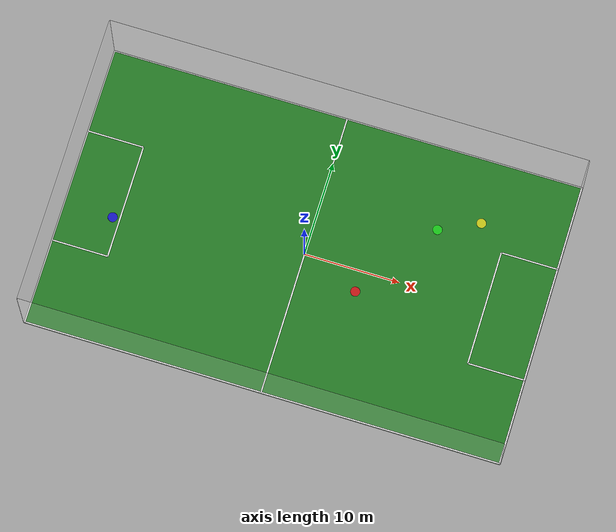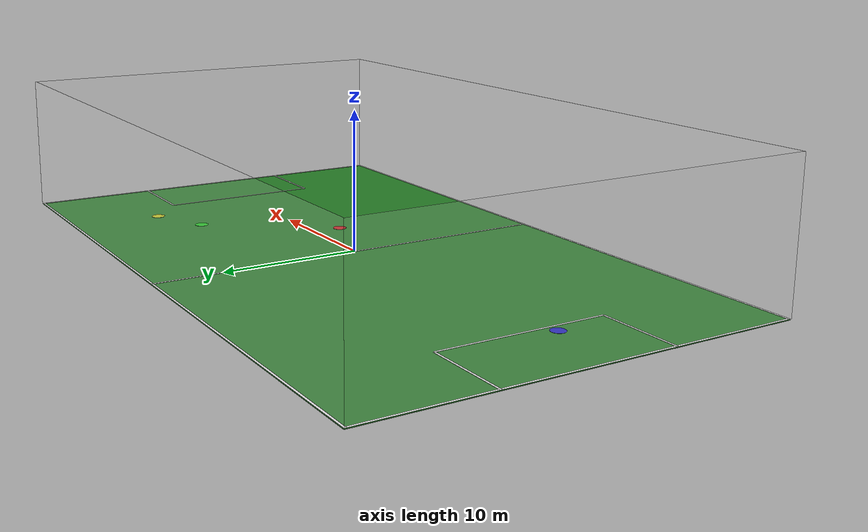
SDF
<?xml version="1.0" ?>
<sdf version="1.9">
  <world name="task2_navigation">

    <plugin filename="gz-sim-physics-system" name="gz::sim::systems::Physics"></plugin>
    <plugin filename="gz-sim-scene-broadcaster-system" name="gz::sim::systems::SceneBroadcaster"></plugin>
    <plugin filename="gz-sim-user-commands-system" name="gz::sim::systems::UserCommands"></plugin>
    <plugin filename="gz-sim-sensors-system" name="gz::sim::systems::Sensors">
    <plugin filename="gz-sim-imu-system" name="gz::sim::systems::Imu"></plugin>
    <plugin filename="gz-sim-air-pressure-system" name="gz::sim::systems::AirPressure"></plugin>
    <plugin filename="gz-sim-air-speed-system" name="gz::sim::systems::AirSpeed"></plugin>
    <plugin filename="gz-sim-navsat-system" name="gz::sim::systems::NavSat"></plugin>
    <plugin filename="gz-sim-magnetometer-system" name="gz::sim::systems::Magnetometer"></plugin>
      <render_engine>ogre2</render_engine>
    </plugin>

    <physics type="ode">
      <max_step_size>0.004</max_step_size>
      <real_time_factor>1.0</real_time_factor>
      <real_time_update_rate>250</real_time_update_rate>
    </physics>
    <gravity>0 0 -9.8</gravity>
    <magnetic_field>6e-06 2.3e-05 -4.2e-05</magnetic_field>
    <atmosphere type="adiabatic"/>

    <scene>
      <ambient>1.0 1.0 1.0 1.0</ambient>
      <background>0.5 0.8 0.95 1</background> <shadows>false</shadows> </scene>

    <light type="directional" name="sun">
      <cast_shadows>false</cast_shadows>
      <pose>0 0 20 0 0 0</pose>
      <diffuse>1.0 1.0 1.0 1</diffuse>
      <specular>0.5 0.5 0.5 1</specular>
      <direction>0 0 -1</direction>
    </light>

    <model name="football_field">
      <static>true</static>
      <link name="link">

        <collision name="collision">
          <geometry><plane><normal>0 0 1</normal><size>50 30</size></plane></geometry>
        </collision>
        <visual name="field_visual">
          <geometry><plane><normal>0 0 1</normal><size>50 30</size></plane></geometry>
          <material>
            <ambient>0.15 0.5 0.15 1</ambient>
            <diffuse>0.15 0.5 0.15 1</diffuse>
            <specular>0.1 0.1 0.1 1</specular>
          </material>
        </visual>

        <visual name="line_center">
          <pose>0 0 0.01 0 0 0</pose>
          <geometry><box><size>0.15 30 0.01</size></box></geometry>
          <material><ambient>1 1 1 1</ambient><diffuse>1 1 1 1</diffuse></material>
        </visual>

        <visual name="line_top">
          <pose>0 14.925 0.01 0 0 0</pose>
          <geometry><box><size>50 0.15 0.01</size></box></geometry>
          <material><ambient>1 1 1 1</ambient><diffuse>1 1 1 1</diffuse></material>
        </visual>
        <visual name="line_bottom">
          <pose>0 -14.925 0.01 0 0 0</pose>
          <geometry><box><size>50 0.15 0.01</size></box></geometry>
          <material><ambient>1 1 1 1</ambient><diffuse>1 1 1 1</diffuse></material>
        </visual>
        <visual name="line_left">
          <pose>-24.925 0 0.01 0 0 0</pose>
          <geometry><box><size>0.15 30 0.01</size></box></geometry>
          <material><ambient>1 1 1 1</ambient><diffuse>1 1 1 1</diffuse></material>
        </visual>
        <visual name="line_right">
          <pose>24.925 0 0.01 0 0 0</pose>
          <geometry><box><size>0.15 30 0.01</size></box></geometry>
          <material><ambient>1 1 1 1</ambient><diffuse>1 1 1 1</diffuse></material>
        </visual>

        <visual name="pen_left_front">
          <pose>-19 0 0.01 0 0 0</pose>
          <geometry><box><size>0.15 12 0.01</size></box></geometry>
          <material><ambient>1 1 1 1</ambient><diffuse>1 1 1 1</diffuse></material>
        </visual>
        <visual name="pen_left_top">
          <pose>-22 6 0.01 0 0 0</pose>
          <geometry><box><size>6 0.15 0.01</size></box></geometry>
          <material><ambient>1 1 1 1</ambient><diffuse>1 1 1 1</diffuse></material>
        </visual>
        <visual name="pen_left_bottom">
          <pose>-22 -6 0.01 0 0 0</pose>
          <geometry><box><size>6 0.15 0.01</size></box></geometry>
          <material><ambient>1 1 1 1</ambient><diffuse>1 1 1 1</diffuse></material>
        </visual>

        <visual name="pen_right_front">
          <pose>19 0 0.01 0 0 0</pose>
          <geometry><box><size>0.15 12 0.01</size></box></geometry>
          <material><ambient>1 1 1 1</ambient><diffuse>1 1 1 1</diffuse></material>
        </visual>
        <visual name="pen_right_top">
          <pose>22 6 0.01 0 0 0</pose>
          <geometry><box><size>6 0.15 0.01</size></box></geometry>
          <material><ambient>1 1 1 1</ambient><diffuse>1 1 1 1</diffuse></material>
        </visual>
        <visual name="pen_right_bottom">
          <pose>22 -6 0.01 0 0 0</pose>
          <geometry><box><size>6 0.15 0.01</size></box></geometry>
          <material><ambient>1 1 1 1</ambient><diffuse>1 1 1 1</diffuse></material>
        </visual>
      </link>
    </model>

    <model name="wall_left">
      <static>true</static>
      <pose>0 15 5 0 0 0</pose>
      <link name="link">
        <collision name="collision"><geometry><box><size>50 0.1 10</size></box></geometry></collision>
        <visual name="visual">
          <geometry><box><size>50 0.1 10</size></box></geometry>
          <material><ambient>1 1 1 0.1</ambient><diffuse>1 1 1 0.1</diffuse></material>
          <transparency>0.8</transparency>
        </visual>
      </link>
    </model>

    <model name="wall_right">
      <static>true</static>
      <pose>0 -15 5 0 0 0</pose>
      <link name="link">
        <collision name="collision"><geometry><box><size>50 0.1 10</size></box></geometry></collision>
        <visual name="visual">
          <geometry><box><size>50 0.1 10</size></box></geometry>
          <material><ambient>1 1 1 0.1</ambient><diffuse>1 1 1 0.1</diffuse></material>
          <transparency>0.8</transparency>
        </visual>
      </link>
    </model>

    <model name="wall_front">
      <static>true</static>
      <pose>25 0 5 0 0 0</pose>
      <link name="link">
        <collision name="collision"><geometry><box><size>0.1 30 10</size></box></geometry></collision>
        <visual name="visual">
          <geometry><box><size>0.1 30 10</size></box></geometry>
          <material><ambient>1 1 1 0.1</ambient><diffuse>1 1 1 0.1</diffuse></material>
          <transparency>0.8</transparency>
        </visual>
      </link>
    </model>

    <model name="wall_back">
      <static>true</static>
      <pose>-25 0 5 0 0 0</pose>
      <link name="link">
        <collision name="collision"><geometry><box><size>0.1 30 10</size></box></geometry></collision>
        <visual name="visual">
          <geometry><box><size>0.1 30 10</size></box></geometry>
          <material><ambient>1 1 1 0.1</ambient><diffuse>1 1 1 0.1</diffuse></material>
          <transparency>0.8</transparency>
        </visual>
      </link>
    </model>

    <model name="landing_pad_red">
      <static>true</static>
      <pose>6.03 -2.19 0.02 0 0 0</pose>
      <link name="link">
        <visual name="visual">
          <geometry><cylinder><radius>0.5</radius><length>0.01</length></cylinder></geometry>
          <material><ambient>0.8 0.1 0.1 1</ambient><diffuse>0.8 0.1 0.1 1</diffuse></material>
        </visual>
      </link>
    </model>

    <model name="landing_pad_blue">
      <static>true</static>
      <pose>-19.76 -1.95 0.02 0 0 0</pose>
      <link name="link">
        <visual name="visual">
          <geometry><cylinder><radius>0.5</radius><length>0.01</length></cylinder></geometry>
          <material><ambient>0.1 0.1 0.8 1</ambient><diffuse>0.1 0.1 0.8 1</diffuse></material>
        </visual>
      </link>
    </model>

    <model name="landing_pad_green">
      <static>true</static>
      <pose>12.14 6.42 0.02 0 0 0</pose>
      <link name="link">
        <visual name="visual">
          <geometry><cylinder><radius>0.5</radius><length>0.01</length></cylinder></geometry>
          <material><ambient>0.1 0.8 0.1 1</ambient><diffuse>0.1 0.8 0.1 1</diffuse></material>
        </visual>
      </link>
    </model>

    <model name="landing_pad_yellow">
      <static>true</static>
      <pose>16.21 8.37 0.02 0 0 0</pose>
      <link name="link">
        <visual name="visual">
          <geometry><cylinder><radius>0.5</radius><length>0.01</length></cylinder></geometry>
          <material><ambient>0.8 0.8 0.1 1</ambient><diffuse>0.8 0.8 0.1 1</diffuse></material>
        </visual>
      </link>
    </model>

  </world>
</sdf>
